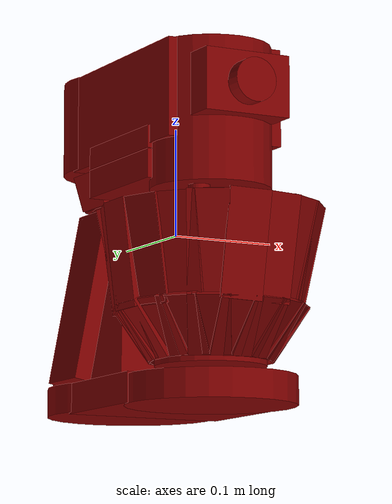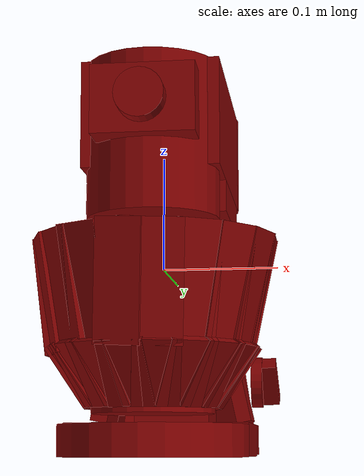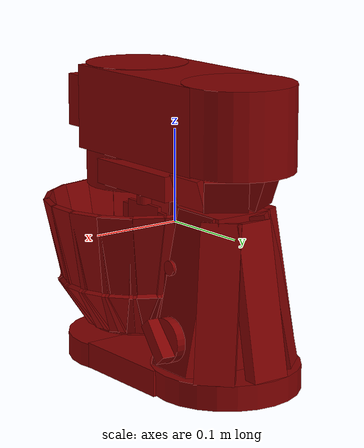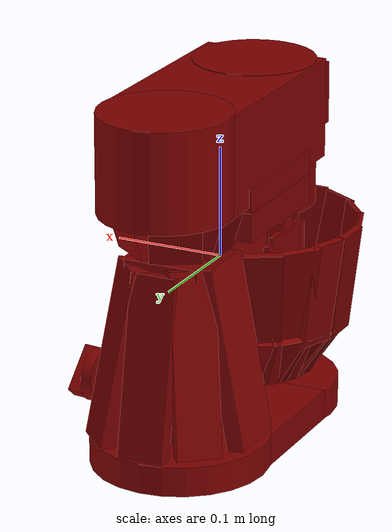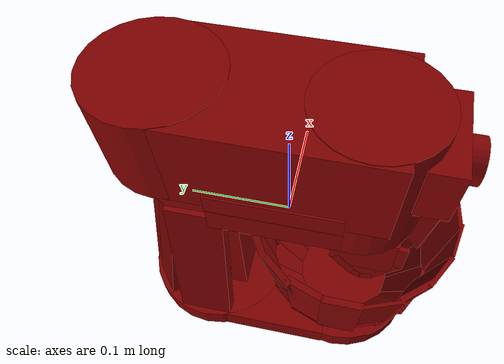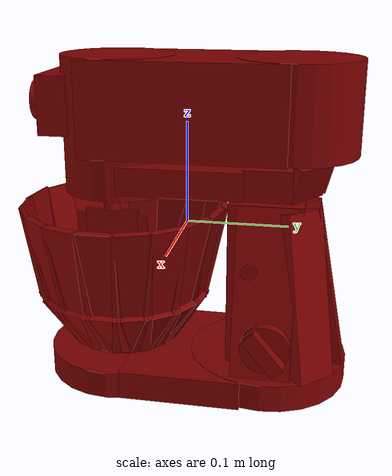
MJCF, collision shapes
<?xml version='1.0' encoding='UTF-8'?>
<mujoco model="model">
  <compiler angle="radian"/>
  <asset>
    <mesh file="visuals/Blender001.obj" name="Blender001_vis"/>
    <mesh file="visuals/Body001.obj" name="Body001_vis"/>
    <mesh file="visuals/Button001.obj" name="Button001_vis"/>
    <mesh file="visuals/Container001.obj" name="Container001_vis"/>
    <mesh file="visuals/Knob001.obj" name="Knob001_vis"/>
    <mesh file="visuals/Lid001.obj" name="Lid001_vis"/>
    <texture file="visuals/T_BC001.png" name="Body001_material" type="2d"/>
    <material name="Body001_material" rgba="1 1 1 1.0" texture="Body001_material" shininess="0.141421377658844" specular="0.7"/>
    <texture file="visuals/T_BC001.png" name="Button001_material" type="2d"/>
    <material name="Button001_material" rgba="1 1 1 1.0" texture="Button001_material" shininess="0.141421377658844" specular="0.7"/>
    <texture file="visuals/T_BC001.png" name="Container001_material" type="2d"/>
    <material name="Container001_material" rgba="1 1 1 1.0" texture="Container001_material" shininess="0.141421377658844" specular="0.7"/>
    <texture file="visuals/T_BC001.png" name="Knob001_material" type="2d"/>
    <material name="Knob001_material" rgba="1 1 1 1.0" texture="Knob001_material" shininess="0.141421377658844" specular="0.7"/>
    <texture file="visuals/T_BC001.png" name="Lid001_material" type="2d"/>
    <material name="Lid001_material" rgba="1 1 1 1.0" texture="Lid001_material" shininess="0.141421377658844" specular="0.7"/>
    <texture file="visuals/T_BC001.png" name="Blender001_material" type="2d"/>
    <material name="Blender001_material" rgba="1 1 1 1.0" texture="Blender001_material" shininess="0.141421377658844" specular="0.7"/>
  </asset>
  <default>
    <default class="visual">
      <geom conaffinity="0" contype="0" group="1" type="mesh"/>
    </default>
    <default class="collision">
      <geom group="0" rgba="0.5 0 0 0.5"/>
    </default>
    <default class="spawn">
      <geom group="0" rgba="1 1 1 0.5" contype="0" conaffinity="0"/>
      <site group="0" rgba="1 1 1 0.5"/>
    </default>
    <default class="region">
      <geom group="1" conaffinity="0" contype="0" rgba="0 1 0 0"/>
    </default>
  </default>
  <worldbody>
    <body>
      <body name="object">
        <geom mesh="Body001_vis" type="mesh" solimp="0.998 0.998 0.001" solref="0.001 1" density="100" friction="0.95 0.3 0.1" class="visual" material="Body001_material"/>
        <geom class="collision" type="cylinder" pos="-0.000030 -0.066848 -0.149729" size="0.07800706475973129 0.01318493764847517" quat="1.0 0.0 0.0 0.0"/>
        <geom class="collision" type="cylinder" pos="-0.002389 0.083879 -0.147722" size="0.07943037897348404 0.013425509445369244" quat="1.0 0.0 0.0 0.0"/>
        <geom class="collision" type="box" pos="-0.000327 0.004918 -0.148511" size="0.07702770084142685 0.05912737920880318 0.013953768648207188" quat="1.0 0.0 0.0 0.0"/>
        <geom class="collision" type="box" pos="0.000548 0.080401 -0.051930" size="0.03387362137436867 0.03569824993610382 0.08175265789031982" quat="1.0 0.0 0.0 0.0"/>
        <geom class="collision" type="box" pos="0.048000 0.082330 -0.051481" size="0.006538844667375088 0.0284084752202034 0.08204905688762665" quat="0.9942047595977783 0.0 -0.1075030118227005 0.0"/>
        <geom class="collision" type="box" pos="-0.034872 0.121409 -0.052271" size="0.007892224006354809 0.019647125154733658 0.08175291121006012" quat="0.8977483510971069 0.04135076701641083 0.08289728313684464 -0.4306577444076538"/>
        <geom class="collision" type="box" pos="-0.000612 0.137430 -0.056761" size="0.007801813073456287 0.021083414554595947 0.0817185565829277" quat="0.6972964406013489 0.06290378421545029 0.06656637042760849 -0.7109076380729675"/>
        <geom class="collision" type="box" pos="-0.053118 0.082330 -0.050905" size="0.007892224937677383 0.0284084752202034 0.08175291121006012" quat="0.9954656958580017 0.0 0.09512124955654144 0.0"/>
        <geom class="collision" type="box" pos="0.038524 0.121751 -0.055641" size="0.007801811210811138 0.02074163220822811 0.08171853423118591" quat="0.38455402851104736 0.0907943993806839 0.026380909606814384 -0.9182475805282593"/>
        <body name="Button001">
          <joint axis="-1.0 0.0 0.0" pos="0.056491 0.068264 -0.026256" limited="true" name="Button001_joint" range="0.0 0.002" type="slide" damping="1" frictionloss="1" armature=".01" stiffness="0.05"/>
          <geom mesh="Button001_vis" type="mesh" solimp="0.998 0.998 0.001" solref="0.001 1" density="100" friction="0.95 0.3 0.1" class="visual" material="Button001_material"/>
          <geom class="collision" type="cylinder" pos="0.058617 0.068168 -0.026482" size="0.007802916225045919 0.0018008091719821095" quat="0.7071068286895752 -0.0 0.7071067690849304 0.0"/>
        </body>
        <body name="Container001">
          <joint axis="0.0 0.0 1.0" pos="0.000000 -0.065595 -0.054107" limited="true" name="Container001_joint" range="0.0 0.05" type="slide" damping="1" frictionloss="1" armature=".01" stiffness="0.05"/>
          <geom mesh="Container001_vis" type="mesh" solimp="0.998 0.998 0.001" solref="0.001 1" density="100" friction="0.95 0.3 0.1" class="visual" material="Container001_material"/>
          <geom class="collision" type="cylinder" pos="-0.000066 -0.066566 -0.124261" size="0.050764307379722595 0.0038426481187343597" quat="1.0 0.0 0.0 0.0"/>
          <geom class="collision" type="box" pos="-0.067712 -0.066568 -0.098143" size="0.0031762332655489445 0.019008275121450424 0.029454151168465614" quat="0.9554689526557922 -6.597572660448688e-15 -0.2950916588306427 -3.964817096857587e-08"/>
          <geom class="collision" type="box" pos="-0.089043 -0.066566 -0.032910" size="0.0031654690392315388 0.018913358449935913 0.048479266464710236" quat="0.9980469942092896 6.768285931713081e-10 -0.062467340379953384 -1.4584673913020652e-08"/>
          <geom class="collision" type="box" pos="-0.063622 -0.043371 -0.098143" size="0.0031762332655489445 0.019008275121450424 0.029454151168465614" quat="0.9409531950950623 -0.05124218016862869 -0.29060855507850647 -0.1659155637025833"/>
          <geom class="collision" type="box" pos="-0.082627 -0.034022 -0.032832" size="0.003165468806400895 0.018913360312581062 0.048479270190000534" quat="0.9828017354011536 -0.011077865958213806 -0.06282565742731094 -0.17329439520835876"/>
          <geom class="collision" type="box" pos="-0.051845 -0.022973 -0.098143" size="0.0031762332655489445 0.019008275121450424 0.029454151168465614" quat="0.8978471159934998 -0.10092726349830627 -0.27729538083076477 -0.3267896771430969"/>
          <geom class="collision" type="box" pos="-0.067324 -0.009795 -0.032441" size="0.0031654685735702515 0.018913358449935913 0.04847926273941994" quat="0.9341279864311218 -0.03716619685292244 -0.1021132692694664 -0.33999478816986084"/>
          <geom class="collision" type="box" pos="-0.033802 -0.007833 -0.098143" size="0.0031762332655489445 0.019008275121450424 0.029454149305820465" quat="0.8274604082107544 -0.14754579961299896 -0.25555679202079773 -0.4777345061302185"/>
          <geom class="collision" type="box" pos="-0.044107 0.011373 -0.032441" size="0.0031654690392315388 0.018913356587290764 0.048479270190000534" quat="0.86089688539505 -0.0543333999812603 -0.0941082090139389 -0.4970392882823944"/>
          <geom class="collision" type="box" pos="-0.011668 0.000223 -0.098143" size="0.0031762332655489445 0.019008278846740723 0.029454149305820465" quat="0.7319316267967224 -0.18968118727207184 -0.22605328261852264 -0.6141636967658997"/>
          <geom class="collision" type="box" pos="-0.016079 0.024245 -0.032441" size="0.0031654690392315388 0.018913360312581062 0.04847926273941994" quat="0.7615081071853638 -0.06984958797693253 -0.08324350416660309 -0.6389812231063843"/>
          <geom class="collision" type="box" pos="0.011886 0.000223 -0.098143" size="0.003176233498379588 0.019008276984095573 0.029454151168465614" quat="0.6141636371612549 -0.22605326771736145 -0.18968121707439423 -0.7319316864013672"/>
          <geom class="collision" type="box" pos="0.015450 0.021433 -0.031809" size="0.003165468340739608 0.018913358449935913 0.04847926273941994" quat="0.6389811635017395 -0.08324349671602249 -0.06984958052635193 -0.7615081071853638"/>
          <geom class="collision" type="box" pos="0.034019 -0.007833 -0.098143" size="0.0031762332655489445 0.019008275121450424 0.029454149305820465" quat="0.4777344763278961 -0.25555679202079773 -0.14754579961299896 -0.8274604082107544"/>
          <geom class="collision" type="box" pos="0.044114 0.009957 -0.031589" size="0.003165468806400895 0.018913358449935913 0.048479266464710236" quat="0.497038871049881 -0.0941082090139389 -0.054333336651325226 -0.8608971238136292"/>
          <geom class="collision" type="box" pos="0.052063 -0.022973 -0.098143" size="0.0031762332655489445 0.019008275121450424 0.029454151168465614" quat="0.32678961753845215 -0.27729547023773193 -0.10092729330062866 -0.8978471159934998"/>
          <geom class="collision" type="box" pos="0.068305 -0.009196 -0.031786" size="0.0031654692720621824 0.018913358449935913 0.04847926273941994" quat="0.3399949073791504 -0.1021132543683052 -0.03716619685292244 -0.934127926826477"/>
          <geom class="collision" type="box" pos="0.063840 -0.043371 -0.098143" size="0.0031762332655489445 0.019008275121450424 0.029454153031110764" quat="0.16591550409793854 -0.2906084358692169 -0.0512421615421772 -0.940953254699707"/>
          <geom class="collision" type="box" pos="0.083285 -0.036229 -0.031664" size="0.003165468806400895 0.018913358449935913 0.04847926273941994" quat="0.17261990904808044 -0.10701578110456467 -0.018869776278734207 -0.9789759516716003"/>
          <geom class="collision" type="box" pos="0.067930 -0.066568 -0.098143" size="0.0031762332655489445 0.019008275121450424 0.029454149305820465" quat="7.631651754991253e-08 -0.2950914800167084 -3.581508423167179e-08 -0.955469012260437"/>
          <geom class="collision" type="box" pos="0.088126 -0.066566 -0.031551" size="0.003165468806400895 0.018913358449935913 0.048479266464710236" quat="1.9337761614224291e-07 0.10866644233465195 -1.9542831353192014e-08 0.9940782785415649"/>
          <geom class="collision" type="box" pos="0.063840 -0.089764 -0.098143" size="0.003176232799887657 0.019008273258805275 0.029454153031110764" quat="0.16591569781303406 0.2906085252761841 -0.05124218016862869 0.9409531950950623"/>
          <geom class="collision" type="box" pos="0.083084 -0.096831 -0.031617" size="0.003165468806400895 0.018913354724645615 0.04847926273941994" quat="0.17262002825737 0.10701579600572586 -0.018869787454605103 0.9789759516716003"/>
          <geom class="collision" type="box" pos="0.052063 -0.110162 -0.098143" size="0.0031762332655489445 0.019008275121450424 0.029454149305820465" quat="0.32678985595703125 0.2772953510284424 -0.10092733055353165 0.897847056388855"/>
          <geom class="collision" type="box" pos="0.067342 -0.123129 -0.031508" size="0.0031654685735702515 0.018913358449935913 0.048479270190000534" quat="0.3399949073791504 0.10211323946714401 -0.03716619312763214 0.934127926826477"/>
          <geom class="collision" type="box" pos="0.034019 -0.125302 -0.098143" size="0.003176232799887657 0.019008275121450424 0.029454151168465614" quat="0.4777345657348633 0.2555568218231201 -0.14754582941532135 0.8274603486061096"/>
          <geom class="collision" type="box" pos="0.044242 -0.143311 -0.031437" size="0.0019278463441878557 0.018913358449935913 0.048479266464710236" quat="0.49724477529525757 0.09078503400087357 -0.052414678037166595 0.8612539768218994"/>
          <geom class="collision" type="box" pos="0.011886 -0.133358 -0.098143" size="0.003176233498379588 0.019008275121450424 0.029454151168465614" quat="0.6141636371612549 0.22605326771736145 -0.18968120217323303 0.7319316864013672"/>
          <geom class="collision" type="box" pos="0.017115 -0.155205 -0.031869" size="0.002035936340689659 0.018913360312581062 0.04847925901412964" quat="0.6589561700820923 0.06770002841949463 -0.04819619283080101 0.7475764751434326"/>
          <geom class="collision" type="box" pos="-0.011668 -0.133358 -0.098143" size="0.003176233498379588 0.019008273258805275 0.029454149305820465" quat="0.7319318056106567 0.18968117237091064 -0.22605329751968384 0.6141634583473206"/>
          <geom class="collision" type="box" pos="-0.014598 -0.156668 -0.030987" size="0.0013950418215245008 0.018913354724645615 0.04847926273941994" quat="0.7795469760894775 0.06233185529708862 -0.02736033871769905 0.6226336359977722"/>
          <geom class="collision" type="box" pos="-0.033802 -0.125302 -0.098143" size="0.002418010961264372 0.019008273258805275 0.029454151168465614" quat="0.827460527420044 0.1475457102060318 -0.2555568516254425 0.477734237909317"/>
          <geom class="collision" type="box" pos="-0.042921 -0.140793 -0.031002" size="0.0021197032183408737 0.018913356587290764 0.04847926273941994" quat="0.8608969449996948 0.05433332547545433 -0.09410806745290756 0.49703922867774963"/>
          <geom class="collision" type="box" pos="-0.050828 -0.109309 -0.097237" size="0.0031762332655489445 0.019008275121450424 0.029454151168465614" quat="0.8978471755981445 0.10092725604772568 -0.27729538083076477 0.32678958773612976"/>
          <geom class="collision" type="box" pos="-0.063177 -0.124584 -0.032027" size="0.002410450717434287 0.018913358449935913 0.04847925901412964" quat="0.9356999397277832 0.03149515762925148 -0.08653219044208527 0.3405669927597046"/>
          <geom class="collision" type="box" pos="-0.063162 -0.089596 -0.097809" size="0.002055129036307335 0.019008273258805275 0.029454156756401062" quat="0.9409531950950623 0.051242150366306305 -0.29060864448547363 0.16591550409793854"/>
          <geom class="collision" type="box" pos="-0.082125 -0.098928 -0.032791" size="0.0016526804538443685 0.01891336217522621 0.048479266464710236" quat="0.9814785718917847 0.01426627952605486 -0.08090804517269135 0.17306119203567505"/>
        </body>
        <body name="Knob001">
          <joint axis="-1.0 0.0 0.0" pos="0.082420 0.087127 -0.094439" limited="true" name="Knob001_joint" range="0.0 4.537856055185257" type="hinge" damping="0.05" armature="0.001"/>
          <geom mesh="Knob001_vis" type="mesh" solimp="0.998 0.998 0.001" solref="0.001 1" density="100" friction="0.95 0.3 0.1" class="visual" material="Knob001_material"/>
          <geom class="collision" type="cylinder" pos="0.076395 0.087149 -0.094528" size="0.023344945162534714 0.004945175722241402" quat="0.70710688829422 -4.7503014855010406e-08 0.7071066498756409 4.750300064415569e-08"/>
          <geom class="collision" type="box" pos="0.087672 0.086722 -0.093844" size="0.007575244177132845 0.007181792054325342 0.021763185039162636" quat="0.9359717965126038 0.3510632812976837 -0.024972474202513695 -0.009366643615067005"/>
        </body>
        <body name="Lid001">
          <joint axis="-1.0 0.0 0.0" pos="0.000000 0.133926 0.029458" limited="true" name="Lid001_joint" range="0.0 1.5707963267948966" type="hinge" damping="1" frictionloss="1" armature=".01" stiffness="0.05"/>
          <geom mesh="Lid001_vis" type="mesh" solimp="0.998 0.998 0.001" solref="0.001 1" density="100" friction="0.95 0.3 0.1" class="visual" material="Lid001_material"/>
          <geom class="collision" type="box" pos="0.000572 0.003331 0.117423" size="0.05756834149360657 0.09693306684494019 0.04504117742180824" quat="1.0 0.0 0.0 0.0"/>
          <geom class="collision" type="cylinder" pos="-0.000030 0.105335 0.118397" size="0.05888476222753525 0.044684380292892456" quat="1.0 0.0 0.0 0.0"/>
          <geom class="collision" type="cylinder" pos="-0.000030 -0.066848 0.097600" size="0.05546166002750397 0.06557430326938629" quat="1.0 0.0 0.0 0.0"/>
          <geom class="collision" type="box" pos="0.000572 0.002260 0.053732" size="0.05951599404215813 0.05912737920880318 0.01326112262904644" quat="1.0 0.0 0.0 0.0"/>
          <geom class="collision" type="box" pos="-0.009393 0.002260 0.078093" size="0.049417585134506226 0.05912724509835243 0.010310188867151737" quat="1.0 0.0 0.0 0.0"/>
          <geom class="collision" type="box" pos="0.000572 -0.120969 0.117941" size="0.04213531315326691 0.014608967117965221 0.028308404609560966" quat="1.0 0.0 0.0 0.0"/>
          <geom class="collision" type="cylinder" pos="-0.000030 -0.143311 0.117417" size="0.02004116401076317 0.007942813448607922" quat="0.7071068286895752 -0.7071067690849304 -1.5700922994638892e-16 5.926933650839829e-24"/>
          <geom class="collision" type="box" pos="0.000572 0.081411 0.054440" size="0.03236949443817139 0.030743412673473358 0.017058735713362694" quat="1.0 0.0 0.0 0.0"/>
          <geom class="collision" type="box" pos="0.041091 0.082652 0.054440" size="0.007447761483490467 0.022549008950591087 0.017058733850717545" quat="0.9883102178573608 0.0 0.1524564027786255 0.0"/>
          <geom class="collision" type="box" pos="0.025321 0.116679 0.054440" size="0.007447761949151754 0.022549008950591087 0.017058733850717545" quat="0.8785291910171509 -0.069834403693676 0.13552159070968628 0.452706903219223"/>
          <geom class="collision" type="box" pos="-0.017327 0.121364 0.054440" size="0.007447761483490467 0.022549008950591087 0.017058733850717545" quat="0.5110110640525818 -0.1304953396320343 0.07882840186357498 0.8459460735321045"/>
          <geom class="collision" type="box" pos="-0.040734 0.085406 0.054440" size="0.007447761483490467 0.022549008950591087 0.017058733850717545" quat="0.008073309436440468 0.15245124697685242 0.0012453856179490685 -0.9882772564888"/>
          <body name="Blender001">
            <joint axis="0.0 0.0 1.0" pos="-0.000096 -0.062877 -0.023933" limited="false" name="Blender001_joint" range="0 360" type="hinge" damping="1" frictionloss="1" armature=".01" stiffness="0.05"/>
            <geom mesh="Blender001_vis" type="mesh" solimp="0.998 0.998 0.001" solref="0.001 1" density="100" friction="0.95 0.3 0.1" class="visual" material="Blender001_material"/>
            <geom class="collision" type="cylinder" pos="-0.000305 -0.062688 0.029303" size="0.009712260216474533 0.003362552495673299" quat="1.0 0.0 0.0 0.0"/>
            <geom class="collision" type="cylinder" pos="-0.021258 -0.084136 0.029303" size="0.009712260216474533 0.003362552495673299" quat="1.0 0.0 0.0 0.0"/>
            <geom class="collision" type="cylinder" pos="-0.010806 -0.073536 0.029303" size="0.007175337988883257 0.0032650581561028957" quat="1.0 0.0 0.0 0.0"/>
            <geom class="collision" type="cylinder" pos="-0.021258 -0.084136 0.013280" size="0.008255471475422382 0.012591256760060787" quat="1.0 0.0 0.0 0.0"/>
            <geom class="collision" type="box" pos="-0.022045 -0.084854 -0.026826" size="0.0023830807767808437 0.02799614518880844 0.02799614518880844" quat="1.0 0.0 0.0 0.0"/>
            <geom class="collision" type="box" pos="-0.022045 -0.085779 -0.063906" size="0.0023830807767808437 0.012887472286820412 0.009464617818593979" quat="1.0 0.0 0.0 0.0"/>
            <geom class="collision" type="box" pos="-0.022045 -0.117517 -0.023231" size="0.0023830807767808437 0.005054674111306667 0.01896805129945278" quat="1.0 0.0 0.0 0.0"/>
            <geom class="collision" type="box" pos="-0.022045 -0.052088 -0.023231" size="0.0023830807767808437 0.005054674111306667 0.018968045711517334" quat="1.0 0.0 0.0 0.0"/>
            <geom class="collision" type="box" pos="-0.022045 -0.064311 -0.054970" size="0.0023830807767808437 0.005054674111306667 0.018968038260936737" quat="0.9494823217391968 -0.3138205111026764 -6.968215802261008e-17 -1.4342966426810758e-23"/>
            <geom class="collision" type="box" pos="-0.022045 -0.105500 -0.055278" size="0.0023830807767808437 0.005054674111306667 0.018968038260936737" quat="0.9449061155319214 0.3273414969444275 7.268441336459375e-17 -4.43388383122925e-24"/>
            <geom class="collision" type="box" pos="-0.022045 -0.089374 -0.073561" size="0.0023830807767808437 0.00505295442417264 0.0070123206824064255" quat="0.8190916180610657 0.5736627578735352 1.27378720432233e-16 -3.3528994497653926e-24"/>
            <geom class="collision" type="box" pos="-0.022045 -0.080129 -0.072739" size="0.0023830807767808437 0.005052954889833927 0.0070123206824064255" quat="0.4754977226257324 0.8797169327735901 1.9533639878357214e-16 -1.2614806869590824e-24"/>
          </body>
        </body>
        <geom class="region" name="reg_main" type="box" pos="-0.00013250000000000067 0.006644999999999998 0.0002964999999999912" size="0.0779115 0.158393 0.1621375"/>
      </body>
    </body>
  </worldbody>
  <actuator>
    <motor name="Button001_joint_actuator" joint="Button001_joint" gear="0.5"/>
    <motor name="Container001_joint_actuator" joint="Container001_joint" gear="10"/>
    <motor name="Knob001_joint_actuator" joint="Knob001_joint" gear="10"/>
    <motor name="Lid001_joint_actuator" joint="Lid001_joint" gear="10"/>
    <motor name="Blender001_joint_actuator" joint="Blender001_joint" gear="10"/>
  </actuator>
</mujoco>
